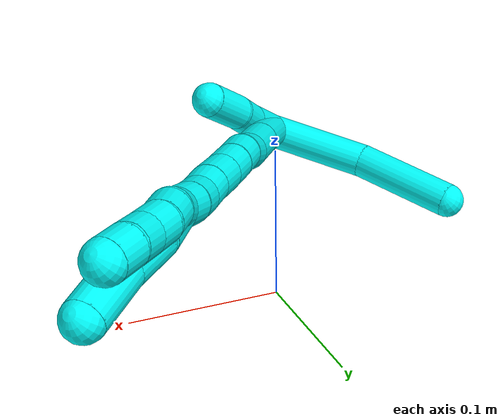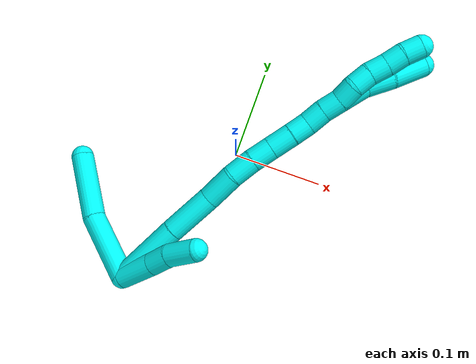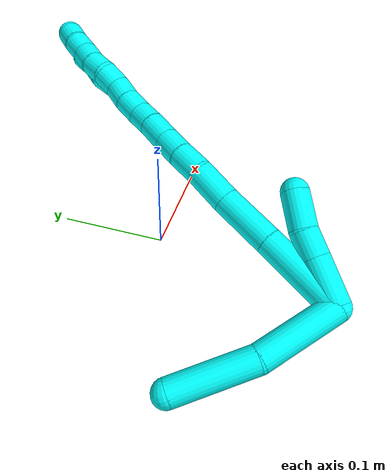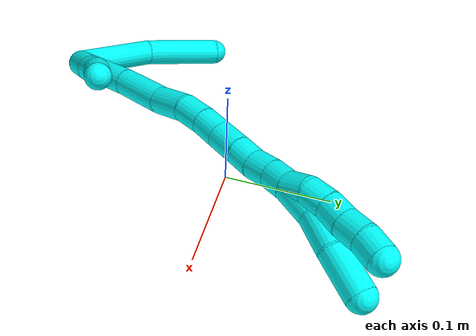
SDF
<sdf version="1.7">
 <world name="default">
  <model name="3">
   <static>0</static>
   <link name="3">
    <collision name="collision-cylinder-e_1_2_8">
     <pose>-0.021639 0.028918 -0.011082 -1.93677 -0.609887 0.858497</pose>
     <geometry><cylinder><radius>0.0125</radius><length>0.075559</length></cylinder></geometry>
     <surface>
      <friction><ode><mu>1.16</mu><mu2>1.16</mu2><slip1>0</slip1><slip2>0</slip2></ode></friction>
      <contact><ode><kp>1e+06</kp><kd>1</kd><max_vel>0</max_vel><min_depth>0.001</min_depth></ode></contact>
     </surface>
    </collision>
    <visual name="visual-cylinder-e_1_2_8">
     <pose>-0.021639 0.028918 -0.011082 -1.93677 -0.609887 0.858497</pose>
     <geometry><cylinder><radius>0.0125</radius><length>0.075559</length></cylinder></geometry>
     <material><ambient>0.003922 1 0.996078 1</ambient></material>
    </visual>
    <collision name="collision-cylinder-e_2_8_6">
     <pose>-0.060849 0.090428 -0.025948 -1.68637 -0.491647 0.549189</pose>
     <geometry><cylinder><radius>0.0125</radius><length>0.074441</length></cylinder></geometry>
     <surface>
      <friction><ode><mu>1.16</mu><mu2>1.16</mu2><slip1>0</slip1><slip2>0</slip2></ode></friction>
      <contact><ode><kp>1e+06</kp><kd>1</kd><max_vel>0</max_vel><min_depth>0.001</min_depth></ode></contact>
     </surface>
    </collision>
    <visual name="visual-cylinder-e_2_8_6">
     <pose>-0.060849 0.090428 -0.025948 -1.68637 -0.491647 0.549189</pose>
     <geometry><cylinder><radius>0.0125</radius><length>0.074441</length></cylinder></geometry>
     <material><ambient>0.003922 1 0.996078 1</ambient></material>
    </visual>
    <collision name="collision-cylinder-e_1_2_9">
     <pose>0.001516 0.003393 0.020637 -0.162975 0.07238 -0.005914</pose>
     <geometry><cylinder><radius>0.0125</radius><length>0.041937</length></cylinder></geometry>
     <surface>
      <friction><ode><mu>1.16</mu><mu2>1.16</mu2><slip1>0</slip1><slip2>0</slip2></ode></friction>
      <contact><ode><kp>1e+06</kp><kd>1</kd><max_vel>0</max_vel><min_depth>0.001</min_depth></ode></contact>
     </surface>
    </collision>
    <visual name="visual-cylinder-e_1_2_9">
     <pose>0.001516 0.003393 0.020637 -0.162975 0.07238 -0.005914</pose>
     <geometry><cylinder><radius>0.0125</radius><length>0.041937</length></cylinder></geometry>
     <material><ambient>0.003922 1 0.996078 1</ambient></material>
    </visual>
    <collision name="collision-cylinder-e_2_9_10">
     <pose>0.003135 0.008653 0.05325 -0.154566 0.008436 -0.000653</pose>
     <geometry><cylinder><radius>0.0125</radius><length>0.024244</length></cylinder></geometry>
     <surface>
      <friction><ode><mu>1.16</mu><mu2>1.16</mu2><slip1>0</slip1><slip2>0</slip2></ode></friction>
      <contact><ode><kp>1e+06</kp><kd>1</kd><max_vel>0</max_vel><min_depth>0.001</min_depth></ode></contact>
     </surface>
    </collision>
    <visual name="visual-cylinder-e_2_9_10">
     <pose>0.003135 0.008653 0.05325 -0.154566 0.008436 -0.000653</pose>
     <geometry><cylinder><radius>0.0125</radius><length>0.024244</length></cylinder></geometry>
     <material><ambient>0.003922 1 0.996078 1</ambient></material>
    </visual>
    <collision name="collision-cylinder-e_3_10_5">
     <pose>0.006108 0.010572 0.081891 -0.003184 0.170592 -0.000272</pose>
     <geometry><cylinder><radius>0.0125</radius><length>0.033819</length></cylinder></geometry>
     <surface>
      <friction><ode><mu>1.16</mu><mu2>1.16</mu2><slip1>0</slip1><slip2>0</slip2></ode></friction>
      <contact><ode><kp>1e+06</kp><kd>1</kd><max_vel>0</max_vel><min_depth>0.001</min_depth></ode></contact>
     </surface>
    </collision>
    <visual name="visual-cylinder-e_3_10_5">
     <pose>0.006108 0.010572 0.081891 -0.003184 0.170592 -0.000272</pose>
     <geometry><cylinder><radius>0.0125</radius><length>0.033819</length></cylinder></geometry>
     <material><ambient>0.003922 1 0.996078 1</ambient></material>
    </visual>
    <collision name="collision-cylinder-e_1_2_11">
     <pose>-3.1e-05 0.020356 0.032156 -0.564372 -0.00082 0.000238</pose>
     <geometry><cylinder><radius>0.0125</radius><length>0.076115</length></cylinder></geometry>
     <surface>
      <friction><ode><mu>1.16</mu><mu2>1.16</mu2><slip1>0</slip1><slip2>0</slip2></ode></friction>
      <contact><ode><kp>1e+06</kp><kd>1</kd><max_vel>0</max_vel><min_depth>0.001</min_depth></ode></contact>
     </surface>
    </collision>
    <visual name="visual-cylinder-e_1_2_11">
     <pose>-3.1e-05 0.020356 0.032156 -0.564372 -0.00082 0.000238</pose>
     <geometry><cylinder><radius>0.0125</radius><length>0.076115</length></cylinder></geometry>
     <material><ambient>0.003922 1 0.996078 1</ambient></material>
    </visual>
    <collision name="collision-cylinder-e_2_11_12">
     <pose>0.001158 0.055229 0.086075 -0.588244 0.04663 -0.014127</pose>
     <geometry><cylinder><radius>0.0125</radius><length>0.052379</length></cylinder></geometry>
     <surface>
      <friction><ode><mu>1.16</mu><mu2>1.16</mu2><slip1>0</slip1><slip2>0</slip2></ode></friction>
      <contact><ode><kp>1e+06</kp><kd>1</kd><max_vel>0</max_vel><min_depth>0.001</min_depth></ode></contact>
     </surface>
    </collision>
    <visual name="visual-cylinder-e_2_11_12">
     <pose>0.001158 0.055229 0.086075 -0.588244 0.04663 -0.014127</pose>
     <geometry><cylinder><radius>0.0125</radius><length>0.052379</length></cylinder></geometry>
     <material><ambient>0.003922 1 0.996078 1</ambient></material>
    </visual>
    <collision name="collision-cylinder-e_3_12_13">
     <pose>0.001416 0.078116 0.123005 -0.504254 -0.055528 0.014308</pose>
     <geometry><cylinder><radius>0.0125</radius><length>0.034698</length></cylinder></geometry>
     <surface>
      <friction><ode><mu>1.16</mu><mu2>1.16</mu2><slip1>0</slip1><slip2>0</slip2></ode></friction>
      <contact><ode><kp>1e+06</kp><kd>1</kd><max_vel>0</max_vel><min_depth>0.001</min_depth></ode></contact>
     </surface>
    </collision>
    <visual name="visual-cylinder-e_3_12_13">
     <pose>0.001416 0.078116 0.123005 -0.504254 -0.055528 0.014308</pose>
     <geometry><cylinder><radius>0.0125</radius><length>0.034698</length></cylinder></geometry>
     <material><ambient>0.003922 1 0.996078 1</ambient></material>
    </visual>
    <collision name="collision-cylinder-e_4_13_14">
     <pose>0.00227 0.094062 0.148785 -0.62 0.138411 -0.044401</pose>
     <geometry><cylinder><radius>0.0125</radius><length>0.026334</length></cylinder></geometry>
     <surface>
      <friction><ode><mu>1.16</mu><mu2>1.16</mu2><slip1>0</slip1><slip2>0</slip2></ode></friction>
      <contact><ode><kp>1e+06</kp><kd>1</kd><max_vel>0</max_vel><min_depth>0.001</min_depth></ode></contact>
     </surface>
    </collision>
    <visual name="visual-cylinder-e_4_13_14">
     <pose>0.00227 0.094062 0.148785 -0.62 0.138411 -0.044401</pose>
     <geometry><cylinder><radius>0.0125</radius><length>0.026334</length></cylinder></geometry>
     <material><ambient>0.003922 1 0.996078 1</ambient></material>
    </visual>
    <collision name="collision-cylinder-e_5_14_15">
     <pose>0.006676 0.108134 0.16868 -0.610599 0.224743 -0.071098</pose>
     <geometry><cylinder><radius>0.0125</radius><length>0.023238</length></cylinder></geometry>
     <surface>
      <friction><ode><mu>1.16</mu><mu2>1.16</mu2><slip1>0</slip1><slip2>0</slip2></ode></friction>
      <contact><ode><kp>1e+06</kp><kd>1</kd><max_vel>0</max_vel><min_depth>0.001</min_depth></ode></contact>
     </surface>
    </collision>
    <visual name="visual-cylinder-e_5_14_15">
     <pose>0.006676 0.108134 0.16868 -0.610599 0.224743 -0.071098</pose>
     <geometry><cylinder><radius>0.0125</radius><length>0.023238</length></cylinder></geometry>
     <material><ambient>0.003922 1 0.996078 1</ambient></material>
    </visual>
    <collision name="collision-cylinder-e_6_15_16">
     <pose>0.011909 0.12146 0.188375 -0.580524 0.209099 -0.062666</pose>
     <geometry><cylinder><radius>0.0125</radius><length>0.025466</length></cylinder></geometry>
     <surface>
      <friction><ode><mu>1.16</mu><mu2>1.16</mu2><slip1>0</slip1><slip2>0</slip2></ode></friction>
      <contact><ode><kp>1e+06</kp><kd>1</kd><max_vel>0</max_vel><min_depth>0.001</min_depth></ode></contact>
     </surface>
    </collision>
    <visual name="visual-cylinder-e_6_15_16">
     <pose>0.011909 0.12146 0.188375 -0.580524 0.209099 -0.062666</pose>
     <geometry><cylinder><radius>0.0125</radius><length>0.025466</length></cylinder></geometry>
     <material><ambient>0.003922 1 0.996078 1</ambient></material>
    </visual>
    <collision name="collision-cylinder-e_7_16_17">
     <pose>0.016861 0.134233 0.206645 -0.647575 0.230354 -0.077611</pose>
     <geometry><cylinder><radius>0.0125</radius><length>0.020231</length></cylinder></geometry>
     <surface>
      <friction><ode><mu>1.16</mu><mu2>1.16</mu2><slip1>0</slip1><slip2>0</slip2></ode></friction>
      <contact><ode><kp>1e+06</kp><kd>1</kd><max_vel>0</max_vel><min_depth>0.001</min_depth></ode></contact>
     </surface>
    </collision>
    <visual name="visual-cylinder-e_7_16_17">
     <pose>0.016861 0.134233 0.206645 -0.647575 0.230354 -0.077611</pose>
     <geometry><cylinder><radius>0.0125</radius><length>0.020231</length></cylinder></geometry>
     <material><ambient>0.003922 1 0.996078 1</ambient></material>
    </visual>
    <collision name="collision-cylinder-e_8_17_18">
     <pose>0.019846 0.145755 0.223387 -0.560715 0.064196 -0.018491</pose>
     <geometry><cylinder><radius>0.0125</radius><length>0.021034</length></cylinder></geometry>
     <surface>
      <friction><ode><mu>1.16</mu><mu2>1.16</mu2><slip1>0</slip1><slip2>0</slip2></ode></friction>
      <contact><ode><kp>1e+06</kp><kd>1</kd><max_vel>0</max_vel><min_depth>0.001</min_depth></ode></contact>
     </surface>
    </collision>
    <visual name="visual-cylinder-e_8_17_18">
     <pose>0.019846 0.145755 0.223387 -0.560715 0.064196 -0.018491</pose>
     <geometry><cylinder><radius>0.0125</radius><length>0.021034</length></cylinder></geometry>
     <material><ambient>0.003922 1 0.996078 1</ambient></material>
    </visual>
    <collision name="collision-cylinder-e_9_18_1">
     <pose>0.022195 0.155826 0.241339 -0.459887 0.164072 -0.038488</pose>
     <geometry><cylinder><radius>0.0125</radius><length>0.020504</length></cylinder></geometry>
     <surface>
      <friction><ode><mu>1.16</mu><mu2>1.16</mu2><slip1>0</slip1><slip2>0</slip2></ode></friction>
      <contact><ode><kp>1e+06</kp><kd>1</kd><max_vel>0</max_vel><min_depth>0.001</min_depth></ode></contact>
     </surface>
    </collision>
    <visual name="visual-cylinder-e_9_18_1">
     <pose>0.022195 0.155826 0.241339 -0.459887 0.164072 -0.038488</pose>
     <geometry><cylinder><radius>0.0125</radius><length>0.020504</length></cylinder></geometry>
     <material><ambient>0.003922 1 0.996078 1</ambient></material>
    </visual>
    <collision name="collision-cylinder-e_1_1_19">
     <pose>0.029088 0.169934 0.26027 -0.772709 0.362035 -0.148631</pose>
     <geometry><cylinder><radius>0.0125</radius><length>0.02947</length></cylinder></geometry>
     <surface>
      <friction><ode><mu>1.16</mu><mu2>1.16</mu2><slip1>0</slip1><slip2>0</slip2></ode></friction>
      <contact><ode><kp>1e+06</kp><kd>1</kd><max_vel>0</max_vel><min_depth>0.001</min_depth></ode></contact>
     </surface>
    </collision>
    <visual name="visual-cylinder-e_1_1_19">
     <pose>0.029088 0.169934 0.26027 -0.772709 0.362035 -0.148631</pose>
     <geometry><cylinder><radius>0.0125</radius><length>0.02947</length></cylinder></geometry>
     <material><ambient>0.003922 1 0.996078 1</ambient></material>
    </visual>
    <collision name="collision-cylinder-e_2_19_20">
     <pose>0.042528 0.187464 0.280872 -0.634991 0.552429 -0.185761</pose>
     <geometry><cylinder><radius>0.0125</radius><length>0.03133</length></cylinder></geometry>
     <surface>
      <friction><ode><mu>1.16</mu><mu2>1.16</mu2><slip1>0</slip1><slip2>0</slip2></ode></friction>
      <contact><ode><kp>1e+06</kp><kd>1</kd><max_vel>0</max_vel><min_depth>0.001</min_depth></ode></contact>
     </surface>
    </collision>
    <visual name="visual-cylinder-e_2_19_20">
     <pose>0.042528 0.187464 0.280872 -0.634991 0.552429 -0.185761</pose>
     <geometry><cylinder><radius>0.0125</radius><length>0.03133</length></cylinder></geometry>
     <material><ambient>0.003922 1 0.996078 1</ambient></material>
    </visual>
    <collision name="collision-cylinder-e_3_20_4">
     <pose>0.060931 0.207097 0.303566 -0.775471 0.546352 -0.227866</pose>
     <geometry><cylinder><radius>0.0125</radius><length>0.0392</length></cylinder></geometry>
     <surface>
      <friction><ode><mu>1.16</mu><mu2>1.16</mu2><slip1>0</slip1><slip2>0</slip2></ode></friction>
      <contact><ode><kp>1e+06</kp><kd>1</kd><max_vel>0</max_vel><min_depth>0.001</min_depth></ode></contact>
     </surface>
    </collision>
    <visual name="visual-cylinder-e_3_20_4">
     <pose>0.060931 0.207097 0.303566 -0.775471 0.546352 -0.227866</pose>
     <geometry><cylinder><radius>0.0125</radius><length>0.0392</length></cylinder></geometry>
     <material><ambient>0.003922 1 0.996078 1</ambient></material>
    </visual>
    <collision name="collision-cylinder-e_1_1_21">
     <pose>0.022551 0.164918 0.259182 -0.482914 -0.132257 0.032614</pose>
     <geometry><cylinder><radius>0.0125</radius><length>0.02</length></cylinder></geometry>
     <surface>
      <friction><ode><mu>1.16</mu><mu2>1.16</mu2><slip1>0</slip1><slip2>0</slip2></ode></friction>
      <contact><ode><kp>1e+06</kp><kd>1</kd><max_vel>0</max_vel><min_depth>0.001</min_depth></ode></contact>
     </surface>
    </collision>
    <visual name="visual-cylinder-e_1_1_21">
     <pose>0.022551 0.164918 0.259182 -0.482914 -0.132257 0.032614</pose>
     <geometry><cylinder><radius>0.0125</radius><length>0.02</length></cylinder></geometry>
     <material><ambient>0.003922 1 0.996078 1</ambient></material>
    </visual>
    <collision name="collision-cylinder-e_2_21_22">
     <pose>0.022756 0.175629 0.275731 -0.666234 0.153015 -0.053036</pose>
     <geometry><cylinder><radius>0.0125</radius><length>0.02</length></cylinder></geometry>
     <surface>
      <friction><ode><mu>1.16</mu><mu2>1.16</mu2><slip1>0</slip1><slip2>0</slip2></ode></friction>
      <contact><ode><kp>1e+06</kp><kd>1</kd><max_vel>0</max_vel><min_depth>0.001</min_depth></ode></contact>
     </surface>
    </collision>
    <visual name="visual-cylinder-e_2_21_22">
     <pose>0.022756 0.175629 0.275731 -0.666234 0.153015 -0.053036</pose>
     <geometry><cylinder><radius>0.0125</radius><length>0.02</length></cylinder></geometry>
     <material><ambient>0.003922 1 0.996078 1</ambient></material>
    </visual>
    <collision name="collision-cylinder-e_3_22_23">
     <pose>0.027278 0.186638 0.291685 -0.539527 0.304467 -0.084792</pose>
     <geometry><cylinder><radius>0.0125</radius><length>0.02</length></cylinder></geometry>
     <surface>
      <friction><ode><mu>1.16</mu><mu2>1.16</mu2><slip1>0</slip1><slip2>0</slip2></ode></friction>
      <contact><ode><kp>1e+06</kp><kd>1</kd><max_vel>0</max_vel><min_depth>0.001</min_depth></ode></contact>
     </surface>
    </collision>
    <visual name="visual-cylinder-e_3_22_23">
     <pose>0.027278 0.186638 0.291685 -0.539527 0.304467 -0.084792</pose>
     <geometry><cylinder><radius>0.0125</radius><length>0.02</length></cylinder></geometry>
     <material><ambient>0.003922 1 0.996078 1</ambient></material>
    </visual>
    <collision name="collision-cylinder-e_4_23_24">
     <pose>0.032179 0.19652 0.30833 -0.532108 0.191453 -0.052322</pose>
     <geometry><cylinder><radius>0.0125</radius><length>0.02</length></cylinder></geometry>
     <surface>
      <friction><ode><mu>1.16</mu><mu2>1.16</mu2><slip1>0</slip1><slip2>0</slip2></ode></friction>
      <contact><ode><kp>1e+06</kp><kd>1</kd><max_vel>0</max_vel><min_depth>0.001</min_depth></ode></contact>
     </surface>
    </collision>
    <visual name="visual-cylinder-e_4_23_24">
     <pose>0.032179 0.19652 0.30833 -0.532108 0.191453 -0.052322</pose>
     <geometry><cylinder><radius>0.0125</radius><length>0.02</length></cylinder></geometry>
     <material><ambient>0.003922 1 0.996078 1</ambient></material>
    </visual>
    <collision name="collision-cylinder-e_5_24_3">
     <pose>0.037725 0.206226 0.324815 -0.532187 0.372917 -0.102745</pose>
     <geometry><cylinder><radius>0.0125</radius><length>0.02</length></cylinder></geometry>
     <surface>
      <friction><ode><mu>1.16</mu><mu2>1.16</mu2><slip1>0</slip1><slip2>0</slip2></ode></friction>
      <contact><ode><kp>1e+06</kp><kd>1</kd><max_vel>0</max_vel><min_depth>0.001</min_depth></ode></contact>
     </surface>
    </collision>
    <visual name="visual-cylinder-e_5_24_3">
     <pose>0.037725 0.206226 0.324815 -0.532187 0.372917 -0.102745</pose>
     <geometry><cylinder><radius>0.0125</radius><length>0.02</length></cylinder></geometry>
     <material><ambient>0.003922 1 0.996078 1</ambient></material>
    </visual>
    <collision name="collision-sphere-3">
     <pose>0.041369 0.210952 0.33284 0 -0 0</pose>
     <geometry><sphere><radius>0.0125</radius></sphere></geometry>
     <surface>
      <friction><ode><mu>1.16</mu><mu2>1.16</mu2><slip1>0</slip1><slip2>0</slip2></ode></friction>
      <contact><ode><kp>1e+06</kp><kd>1</kd><max_vel>0</max_vel><min_depth>0.001</min_depth></ode></contact>
     </surface>
    </collision>
    <visual name="visual-sphere-3">
     <pose>0.041369 0.210952 0.33284 0 -0 0</pose>
     <geometry><sphere><radius>0.0125</radius></sphere></geometry>
     <material><ambient>0.003922 1 0.996078 1</ambient></material>
    </visual>
    <collision name="collision-sphere-24">
     <pose>0.034082 0.201501 0.31679 0 -0 0</pose>
     <geometry><sphere><radius>0.0125</radius></sphere></geometry>
     <surface>
      <friction><ode><mu>1.16</mu><mu2>1.16</mu2><slip1>0</slip1><slip2>0</slip2></ode></friction>
      <contact><ode><kp>1e+06</kp><kd>1</kd><max_vel>0</max_vel><min_depth>0.001</min_depth></ode></contact>
     </surface>
    </collision>
    <visual name="visual-sphere-24">
     <pose>0.034082 0.201501 0.31679 0 -0 0</pose>
     <geometry><sphere><radius>0.0125</radius></sphere></geometry>
     <material><ambient>0.003922 1 0.996078 1</ambient></material>
    </visual>
    <collision name="collision-sphere-23">
     <pose>0.030276 0.191539 0.29987 0 -0 0</pose>
     <geometry><sphere><radius>0.0125</radius></sphere></geometry>
     <surface>
      <friction><ode><mu>1.16</mu><mu2>1.16</mu2><slip1>0</slip1><slip2>0</slip2></ode></friction>
      <contact><ode><kp>1e+06</kp><kd>1</kd><max_vel>0</max_vel><min_depth>0.001</min_depth></ode></contact>
     </surface>
    </collision>
    <visual name="visual-sphere-23">
     <pose>0.030276 0.191539 0.29987 0 -0 0</pose>
     <geometry><sphere><radius>0.0125</radius></sphere></geometry>
     <material><ambient>0.003922 1 0.996078 1</ambient></material>
    </visual>
    <collision name="collision-sphere-22">
     <pose>0.02428 0.181737 0.2835 0 -0 0</pose>
     <geometry><sphere><radius>0.0125</radius></sphere></geometry>
     <surface>
      <friction><ode><mu>1.16</mu><mu2>1.16</mu2><slip1>0</slip1><slip2>0</slip2></ode></friction>
      <contact><ode><kp>1e+06</kp><kd>1</kd><max_vel>0</max_vel><min_depth>0.001</min_depth></ode></contact>
     </surface>
    </collision>
    <visual name="visual-sphere-22">
     <pose>0.02428 0.181737 0.2835 0 -0 0</pose>
     <geometry><sphere><radius>0.0125</radius></sphere></geometry>
     <material><ambient>0.003922 1 0.996078 1</ambient></material>
    </visual>
    <collision name="collision-sphere-21">
     <pose>0.021232 0.169521 0.267961 0 -0 0</pose>
     <geometry><sphere><radius>0.0125</radius></sphere></geometry>
     <surface>
      <friction><ode><mu>1.16</mu><mu2>1.16</mu2><slip1>0</slip1><slip2>0</slip2></ode></friction>
      <contact><ode><kp>1e+06</kp><kd>1</kd><max_vel>0</max_vel><min_depth>0.001</min_depth></ode></contact>
     </surface>
    </collision>
    <visual name="visual-sphere-21">
     <pose>0.021232 0.169521 0.267961 0 -0 0</pose>
     <geometry><sphere><radius>0.0125</radius></sphere></geometry>
     <material><ambient>0.003922 1 0.996078 1</ambient></material>
    </visual>
    <collision name="collision-sphere-4">
     <pose>0.071115 0.218821 0.315525 0 -0 0</pose>
     <geometry><sphere><radius>0.0125</radius></sphere></geometry>
     <surface>
      <friction><ode><mu>1.16</mu><mu2>1.16</mu2><slip1>0</slip1><slip2>0</slip2></ode></friction>
      <contact><ode><kp>1e+06</kp><kd>1</kd><max_vel>0</max_vel><min_depth>0.001</min_depth></ode></contact>
     </surface>
    </collision>
    <visual name="visual-sphere-4">
     <pose>0.071115 0.218821 0.315525 0 -0 0</pose>
     <geometry><sphere><radius>0.0125</radius></sphere></geometry>
     <material><ambient>0.003922 1 0.996078 1</ambient></material>
    </visual>
    <collision name="collision-sphere-20">
     <pose>0.050748 0.195374 0.291608 0 -0 0</pose>
     <geometry><sphere><radius>0.0125</radius></sphere></geometry>
     <surface>
      <friction><ode><mu>1.16</mu><mu2>1.16</mu2><slip1>0</slip1><slip2>0</slip2></ode></friction>
      <contact><ode><kp>1e+06</kp><kd>1</kd><max_vel>0</max_vel><min_depth>0.001</min_depth></ode></contact>
     </surface>
    </collision>
    <visual name="visual-sphere-20">
     <pose>0.050748 0.195374 0.291608 0 -0 0</pose>
     <geometry><sphere><radius>0.0125</radius></sphere></geometry>
     <material><ambient>0.003922 1 0.996078 1</ambient></material>
    </visual>
    <collision name="collision-sphere-5">
     <pose>0.008979 0.010625 0.098555 0 -0 0</pose>
     <geometry><sphere><radius>0.0125</radius></sphere></geometry>
     <surface>
      <friction><ode><mu>1.16</mu><mu2>1.16</mu2><slip1>0</slip1><slip2>0</slip2></ode></friction>
      <contact><ode><kp>1e+06</kp><kd>1</kd><max_vel>0</max_vel><min_depth>0.001</min_depth></ode></contact>
     </surface>
    </collision>
    <visual name="visual-sphere-5">
     <pose>0.008979 0.010625 0.098555 0 -0 0</pose>
     <geometry><sphere><radius>0.0125</radius></sphere></geometry>
     <material><ambient>0.003922 1 0.996078 1</ambient></material>
    </visual>
    <collision name="collision-sphere-10">
     <pose>0.003237 0.010519 0.065227 0 -0 0</pose>
     <geometry><sphere><radius>0.0125</radius></sphere></geometry>
     <surface>
      <friction><ode><mu>1.16</mu><mu2>1.16</mu2><slip1>0</slip1><slip2>0</slip2></ode></friction>
      <contact><ode><kp>1e+06</kp><kd>1</kd><max_vel>0</max_vel><min_depth>0.001</min_depth></ode></contact>
     </surface>
    </collision>
    <visual name="visual-sphere-10">
     <pose>0.003237 0.010519 0.065227 0 -0 0</pose>
     <geometry><sphere><radius>0.0125</radius></sphere></geometry>
     <material><ambient>0.003922 1 0.996078 1</ambient></material>
    </visual>
    <collision name="collision-sphere-6">
     <pose>-0.07842 0.123021 -0.029732 0 -0 0</pose>
     <geometry><sphere><radius>0.0125</radius></sphere></geometry>
     <surface>
      <friction><ode><mu>1.16</mu><mu2>1.16</mu2><slip1>0</slip1><slip2>0</slip2></ode></friction>
      <contact><ode><kp>1e+06</kp><kd>1</kd><max_vel>0</max_vel><min_depth>0.001</min_depth></ode></contact>
     </surface>
    </collision>
    <visual name="visual-sphere-6">
     <pose>-0.07842 0.123021 -0.029732 0 -0 0</pose>
     <geometry><sphere><radius>0.0125</radius></sphere></geometry>
     <material><ambient>0.003922 1 0.996078 1</ambient></material>
    </visual>
    <collision name="collision-sphere-9">
     <pose>0.003033 0.006787 0.041273 0 -0 0</pose>
     <geometry><sphere><radius>0.0125</radius></sphere></geometry>
     <surface>
      <friction><ode><mu>1.16</mu><mu2>1.16</mu2><slip1>0</slip1><slip2>0</slip2></ode></friction>
      <contact><ode><kp>1e+06</kp><kd>1</kd><max_vel>0</max_vel><min_depth>0.001</min_depth></ode></contact>
     </surface>
    </collision>
    <visual name="visual-sphere-9">
     <pose>0.003033 0.006787 0.041273 0 -0 0</pose>
     <geometry><sphere><radius>0.0125</radius></sphere></geometry>
     <material><ambient>0.003922 1 0.996078 1</ambient></material>
    </visual>
    <collision name="collision-sphere-2">
     <geometry><sphere><radius>0.0125</radius></sphere></geometry>
     <surface>
      <friction><ode><mu>1.16</mu><mu2>1.16</mu2><slip1>0</slip1><slip2>0</slip2></ode></friction>
      <contact><ode><kp>1e+06</kp><kd>1</kd><max_vel>0</max_vel><min_depth>0.001</min_depth></ode></contact>
     </surface>
    </collision>
    <visual name="visual-sphere-2">
     <geometry><sphere><radius>0.0125</radius></sphere></geometry>
     <material><ambient>0.003922 1 0.996078 1</ambient></material>
    </visual>
    <collision name="collision-sphere-19">
     <pose>0.034307 0.179554 0.270136 0 -0 0</pose>
     <geometry><sphere><radius>0.0125</radius></sphere></geometry>
     <surface>
      <friction><ode><mu>1.16</mu><mu2>1.16</mu2><slip1>0</slip1><slip2>0</slip2></ode></friction>
      <contact><ode><kp>1e+06</kp><kd>1</kd><max_vel>0</max_vel><min_depth>0.001</min_depth></ode></contact>
     </surface>
    </collision>
    <visual name="visual-sphere-19">
     <pose>0.034307 0.179554 0.270136 0 -0 0</pose>
     <geometry><sphere><radius>0.0125</radius></sphere></geometry>
     <material><ambient>0.003922 1 0.996078 1</ambient></material>
    </visual>
    <collision name="collision-sphere-8">
     <pose>-0.043278 0.057835 -0.022165 0 -0 0</pose>
     <geometry><sphere><radius>0.0125</radius></sphere></geometry>
     <surface>
      <friction><ode><mu>1.16</mu><mu2>1.16</mu2><slip1>0</slip1><slip2>0</slip2></ode></friction>
      <contact><ode><kp>1e+06</kp><kd>1</kd><max_vel>0</max_vel><min_depth>0.001</min_depth></ode></contact>
     </surface>
    </collision>
    <visual name="visual-sphere-8">
     <pose>-0.043278 0.057835 -0.022165 0 -0 0</pose>
     <geometry><sphere><radius>0.0125</radius></sphere></geometry>
     <material><ambient>0.003922 1 0.996078 1</ambient></material>
    </visual>
    <collision name="collision-sphere-11">
     <pose>-6.2e-05 0.040713 0.064311 0 -0 0</pose>
     <geometry><sphere><radius>0.0125</radius></sphere></geometry>
     <surface>
      <friction><ode><mu>1.16</mu><mu2>1.16</mu2><slip1>0</slip1><slip2>0</slip2></ode></friction>
      <contact><ode><kp>1e+06</kp><kd>1</kd><max_vel>0</max_vel><min_depth>0.001</min_depth></ode></contact>
     </surface>
    </collision>
    <visual name="visual-sphere-11">
     <pose>-6.2e-05 0.040713 0.064311 0 -0 0</pose>
     <geometry><sphere><radius>0.0125</radius></sphere></geometry>
     <material><ambient>0.003922 1 0.996078 1</ambient></material>
    </visual>
    <collision name="collision-sphere-12">
     <pose>0.002379 0.069746 0.107839 0 -0 0</pose>
     <geometry><sphere><radius>0.0125</radius></sphere></geometry>
     <surface>
      <friction><ode><mu>1.16</mu><mu2>1.16</mu2><slip1>0</slip1><slip2>0</slip2></ode></friction>
      <contact><ode><kp>1e+06</kp><kd>1</kd><max_vel>0</max_vel><min_depth>0.001</min_depth></ode></contact>
     </surface>
    </collision>
    <visual name="visual-sphere-12">
     <pose>0.002379 0.069746 0.107839 0 -0 0</pose>
     <geometry><sphere><radius>0.0125</radius></sphere></geometry>
     <material><ambient>0.003922 1 0.996078 1</ambient></material>
    </visual>
    <collision name="collision-sphere-13">
     <pose>0.000453 0.086485 0.138171 0 -0 0</pose>
     <geometry><sphere><radius>0.0125</radius></sphere></geometry>
     <surface>
      <friction><ode><mu>1.16</mu><mu2>1.16</mu2><slip1>0</slip1><slip2>0</slip2></ode></friction>
      <contact><ode><kp>1e+06</kp><kd>1</kd><max_vel>0</max_vel><min_depth>0.001</min_depth></ode></contact>
     </surface>
    </collision>
    <visual name="visual-sphere-13">
     <pose>0.000453 0.086485 0.138171 0 -0 0</pose>
     <geometry><sphere><radius>0.0125</radius></sphere></geometry>
     <material><ambient>0.003922 1 0.996078 1</ambient></material>
    </visual>
    <collision name="collision-sphere-14">
     <pose>0.004087 0.10164 0.159399 0 -0 0</pose>
     <geometry><sphere><radius>0.0125</radius></sphere></geometry>
     <surface>
      <friction><ode><mu>1.16</mu><mu2>1.16</mu2><slip1>0</slip1><slip2>0</slip2></ode></friction>
      <contact><ode><kp>1e+06</kp><kd>1</kd><max_vel>0</max_vel><min_depth>0.001</min_depth></ode></contact>
     </surface>
    </collision>
    <visual name="visual-sphere-14">
     <pose>0.004087 0.10164 0.159399 0 -0 0</pose>
     <geometry><sphere><radius>0.0125</radius></sphere></geometry>
     <material><ambient>0.003922 1 0.996078 1</ambient></material>
    </visual>
    <collision name="collision-sphere-15">
     <pose>0.009266 0.114629 0.17796 0 -0 0</pose>
     <geometry><sphere><radius>0.0125</radius></sphere></geometry>
     <surface>
      <friction><ode><mu>1.16</mu><mu2>1.16</mu2><slip1>0</slip1><slip2>0</slip2></ode></friction>
      <contact><ode><kp>1e+06</kp><kd>1</kd><max_vel>0</max_vel><min_depth>0.001</min_depth></ode></contact>
     </surface>
    </collision>
    <visual name="visual-sphere-15">
     <pose>0.009266 0.114629 0.17796 0 -0 0</pose>
     <geometry><sphere><radius>0.0125</radius></sphere></geometry>
     <material><ambient>0.003922 1 0.996078 1</ambient></material>
    </visual>
    <collision name="collision-sphere-16">
     <pose>0.014552 0.128292 0.19879 0 -0 0</pose>
     <geometry><sphere><radius>0.0125</radius></sphere></geometry>
     <surface>
      <friction><ode><mu>1.16</mu><mu2>1.16</mu2><slip1>0</slip1><slip2>0</slip2></ode></friction>
      <contact><ode><kp>1e+06</kp><kd>1</kd><max_vel>0</max_vel><min_depth>0.001</min_depth></ode></contact>
     </surface>
    </collision>
    <visual name="visual-sphere-16">
     <pose>0.014552 0.128292 0.19879 0 -0 0</pose>
     <geometry><sphere><radius>0.0125</radius></sphere></geometry>
     <material><ambient>0.003922 1 0.996078 1</ambient></material>
    </visual>
    <collision name="collision-sphere-17">
     <pose>0.019171 0.140174 0.214499 0 -0 0</pose>
     <geometry><sphere><radius>0.0125</radius></sphere></geometry>
     <surface>
      <friction><ode><mu>1.16</mu><mu2>1.16</mu2><slip1>0</slip1><slip2>0</slip2></ode></friction>
      <contact><ode><kp>1e+06</kp><kd>1</kd><max_vel>0</max_vel><min_depth>0.001</min_depth></ode></contact>
     </surface>
    </collision>
    <visual name="visual-sphere-17">
     <pose>0.019171 0.140174 0.214499 0 -0 0</pose>
     <geometry><sphere><radius>0.0125</radius></sphere></geometry>
     <material><ambient>0.003922 1 0.996078 1</ambient></material>
    </visual>
    <collision name="collision-sphere-18">
     <pose>0.02052 0.151336 0.232275 0 -0 0</pose>
     <geometry><sphere><radius>0.0125</radius></sphere></geometry>
     <surface>
      <friction><ode><mu>1.16</mu><mu2>1.16</mu2><slip1>0</slip1><slip2>0</slip2></ode></friction>
      <contact><ode><kp>1e+06</kp><kd>1</kd><max_vel>0</max_vel><min_depth>0.001</min_depth></ode></contact>
     </surface>
    </collision>
    <visual name="visual-sphere-18">
     <pose>0.02052 0.151336 0.232275 0 -0 0</pose>
     <geometry><sphere><radius>0.0125</radius></sphere></geometry>
     <material><ambient>0.003922 1 0.996078 1</ambient></material>
    </visual>
    <collision name="collision-sphere-1">
     <pose>0.02387 0.160315 0.250403 0 -0 0</pose>
     <geometry><sphere><radius>0.0125</radius></sphere></geometry>
     <surface>
      <friction><ode><mu>1.16</mu><mu2>1.16</mu2><slip1>0</slip1><slip2>0</slip2></ode></friction>
      <contact><ode><kp>1e+06</kp><kd>1</kd><max_vel>0</max_vel><min_depth>0.001</min_depth></ode></contact>
     </surface>
    </collision>
    <visual name="visual-sphere-1">
     <pose>0.02387 0.160315 0.250403 0 -0 0</pose>
     <geometry><sphere><radius>0.0125</radius></sphere></geometry>
     <material><ambient>0.003922 1 0.996078 1</ambient></material>
    </visual>
    <inertial>
     <pose>0.004598 0.095249 0.129878 0 -0 0</pose>
     <mass>0.75</mass>
     <inertia>
      <ixx>0.000191</ixx>
      <ixy>0</ixy>
      <ixz>0</ixz>
      <iyy>0.000172</iyy>
      <iyz>0</iyz>
      <izz>-4.8e-05</izz>
     </inertia>
    </inertial>
   </link>
   <pose>-0.068233 -0.171863 0.042352 -0.657715 0.65226 -0.291949</pose>
  </model>
 </world>
</sdf>
